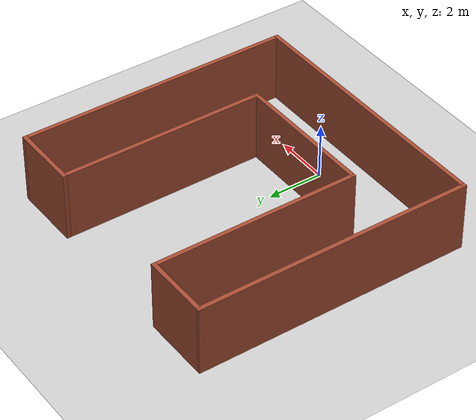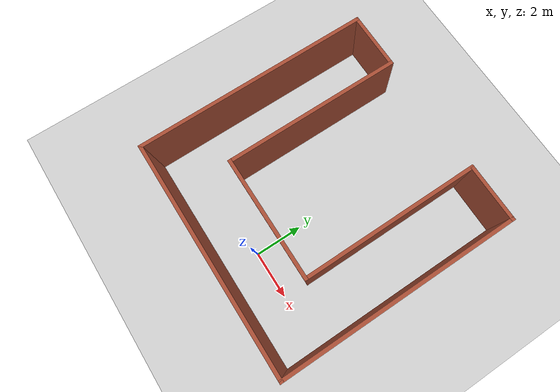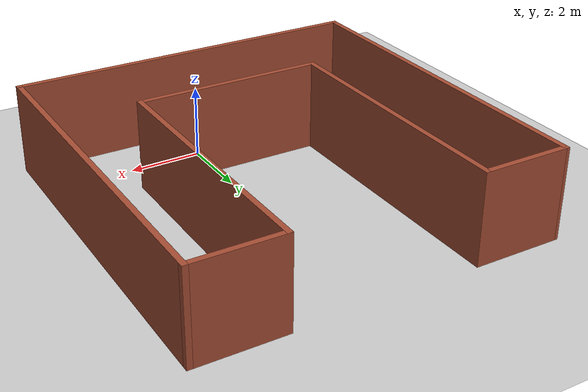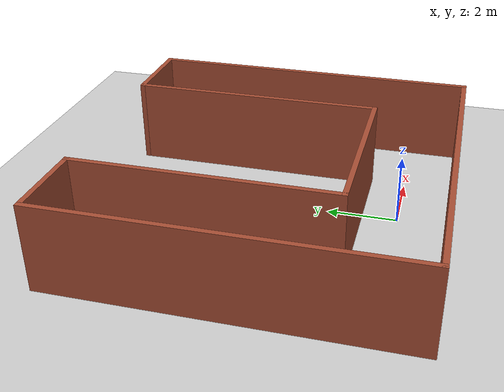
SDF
<sdf version="1.6">
 <world name="default">
  <light name="sun" type="directional">
   <pose>0 0 10 0 -0 0</pose>
   <diffuse>0.8 0.8 0.8 1</diffuse>
   <specular>0.2 0.2 0.2 1</specular>
   <attenuation>
    <range>1000</range>
    <constant>0.9</constant>
    <linear>0.01</linear>
    <quadratic>0.001</quadratic>
   </attenuation>
   <direction>-0.5 0.1 -0.9</direction>
  </light>
  <model name="ground_plane">
   <static>1</static>
   <link name="link">
    <collision name="collision">
     <geometry><plane><normal>0 0 1</normal><size>100 100</size></plane></geometry>
     <surface>
      <contact><collide_bitmask>65535</collide_bitmask></contact>
      <friction><ode><mu>100</mu><mu2>50</mu2></ode></friction>
     </surface>
    </collision>
    <visual name="visual">
     <cast_shadows>0</cast_shadows>
     <geometry><plane><normal>0 0 1</normal><size>100 100</size></plane></geometry>
     <material>
      <script><uri>file://media/materials/scripts/gazebo.material</uri><name>Gazebo/Grey</name></script>
     </material>
    </visual>
   </link>
  </model>
  <gravity>0 0 -9.8</gravity>
  <magnetic_field>6e-06 2.3e-05 -4.2e-05</magnetic_field>
  <atmosphere type="adiabatic"/>
  <physics name="default_physics" default="0" type="ode">
   <max_step_size>0.001</max_step_size>
   <real_time_factor>1</real_time_factor>
   <real_time_update_rate>1000</real_time_update_rate>
  </physics>
  <scene><ambient>0.4 0.4 0.4 1</ambient><background>0.7 0.7 0.7 1</background><shadows>1</shadows></scene>
  <spherical_coordinates>
   <surface_model>EARTH_WGS84</surface_model>
   <latitude_deg>0</latitude_deg>
   <longitude_deg>0</longitude_deg>
   <elevation>0</elevation>
   <heading_deg>0</heading_deg>
  </spherical_coordinates>
  <model name="UWorld_SG_Editor">
   <pose>-0.5 3.5 0 0 -0 0</pose>
   <link name="Wall_0">
    <collision name="Wall_0_Collision">
     <geometry><box><size>2.5 0.15 2.5</size></box></geometry>
     <pose>0 0 1.25 0 -0 0</pose>
    </collision>
    <visual name="Wall_0_Visual">
     <pose>0 0 1.25 0 -0 0</pose>
     <geometry><box><size>2.5 0.15 2.5</size></box></geometry>
     <material>
      <script><uri>file://media/materials/scripts/gazebo.material</uri><name>Gazebo/Bricks</name></script>
      <ambient>1 0.764706 0.305882 1</ambient>
     </material>
     <meta><layer>0</layer></meta>
    </visual>
    <pose>-3.74979 4.92499 0 0 -0 0.000182</pose>
   </link>
   <link name="Wall_11">
    <collision name="Wall_11_Collision">
     <geometry><box><size>7.5 0.15 2.5</size></box></geometry>
     <pose>0 0 1.25 0 -0 0</pose>
    </collision>
    <visual name="Wall_11_Visual">
     <pose>0 0 1.25 0 -0 0</pose>
     <geometry><box><size>7.5 0.15 2.5</size></box></geometry>
     <material>
      <script><uri>file://media/materials/scripts/gazebo.material</uri><name>Gazebo/Bricks</name></script>
      <ambient>1 0.764706 0.305882 1</ambient>
     </material>
     <meta><layer>0</layer></meta>
    </visual>
    <pose>-2.57479 1.24999 0 0 0 -1.57085</pose>
   </link>
   <link name="Wall_13">
    <collision name="Wall_13_Collision">
     <geometry><box><size>10 0.15 2.5</size></box></geometry>
     <pose>0 0 1.25 0 -0 0</pose>
    </collision>
    <visual name="Wall_13_Visual">
     <pose>0 0 1.25 0 -0 0</pose>
     <geometry><box><size>10 0.15 2.5</size></box></geometry>
     <material>
      <script><uri>file://media/materials/scripts/gazebo.material</uri><name>Gazebo/Bricks</name></script>
      <ambient>1 0.764706 0.305882 1</ambient>
     </material>
     <meta><layer>0</layer></meta>
    </visual>
    <pose>0 -4.92522 0 0 -0 0</pose>
   </link>
   <link name="Wall_15">
    <collision name="Wall_15_Collision">
     <geometry><box><size>10 0.15 2.5</size></box></geometry>
     <pose>0 0 1.25 0 -0 0</pose>
    </collision>
    <visual name="Wall_15_Visual">
     <pose>0 0 1.25 0 -0 0</pose>
     <geometry><box><size>10 0.15 2.5</size></box></geometry>
     <material>
      <script><uri>file://media/materials/scripts/gazebo.material</uri><name>Gazebo/Bricks</name></script>
      <ambient>1 0.764706 0.305882 1</ambient>
     </material>
     <meta><layer>0</layer></meta>
    </visual>
    <pose>4.925 -0.00022 0 0 -0 1.5708</pose>
   </link>
   <link name="Wall_17">
    <collision name="Wall_17_Collision">
     <geometry><box><size>2.5 0.15 2.5</size></box></geometry>
     <pose>0 0 1.25 0 -0 0</pose>
    </collision>
    <visual name="Wall_17_Visual">
     <pose>0 0 1.25 0 -0 0</pose>
     <geometry><box><size>2.5 0.15 2.5</size></box></geometry>
     <material>
      <script><uri>file://media/materials/scripts/gazebo.material</uri><name>Gazebo/Bricks</name></script>
      <ambient>1 0.764706 0.305882 1</ambient>
     </material>
     <meta><layer>0</layer></meta>
    </visual>
    <pose>3.75 4.92478 0 0 -0 3.14159</pose>
   </link>
   <link name="Wall_19">
    <collision name="Wall_19_Collision">
     <geometry><box><size>7.5 0.15 2.5</size></box></geometry>
     <pose>0 0 1.25 0 -0 0</pose>
    </collision>
    <visual name="Wall_19_Visual">
     <pose>0 0 1.25 0 -0 0</pose>
     <geometry><box><size>7.5 0.15 2.5</size></box></geometry>
     <material>
      <script><uri>file://media/materials/scripts/gazebo.material</uri><name>Gazebo/Bricks</name></script>
      <ambient>1 0.764706 0.305882 1</ambient>
     </material>
     <meta><layer>0</layer></meta>
    </visual>
    <pose>2.575 1.24978 0 0 0 -1.5708</pose>
   </link>
   <link name="Wall_21">
    <collision name="Wall_21_Collision">
     <geometry><box><size>5.29957 0.15 2.5</size></box></geometry>
     <pose>0 0 1.25 0 -0 0</pose>
    </collision>
    <visual name="Wall_21_Visual">
     <pose>0 0 1.25 0 -0 0</pose>
     <geometry><box><size>5.29957 0.15 2.5</size></box></geometry>
     <material>
      <script><uri>file://media/materials/scripts/gazebo.material</uri><name>Gazebo/Bricks</name></script>
      <ambient>1 0.764706 0.305882 1</ambient>
     </material>
     <meta><layer>0</layer></meta>
    </visual>
    <pose>0 -2.42522 0 0 -0 0</pose>
   </link>
   <link name="Wall_9">
    <collision name="Wall_9_Collision">
     <geometry><box><size>10 0.15 2.5</size></box></geometry>
     <pose>0 0 1.25 0 -0 0</pose>
    </collision>
    <visual name="Wall_9_Visual">
     <pose>0 0 1.25 0 -0 0</pose>
     <geometry><box><size>10 0.15 2.5</size></box></geometry>
     <material>
      <script><uri>file://media/materials/scripts/gazebo.material</uri><name>Gazebo/Bricks</name></script>
      <ambient>1 0.764706 0.305882 1</ambient>
     </material>
     <meta><layer>0</layer></meta>
    </visual>
    <pose>-4.925 -0.00022 0 0 0 -1.5708</pose>
   </link>
   <static>1</static>
  </model>
 </world>
</sdf>
